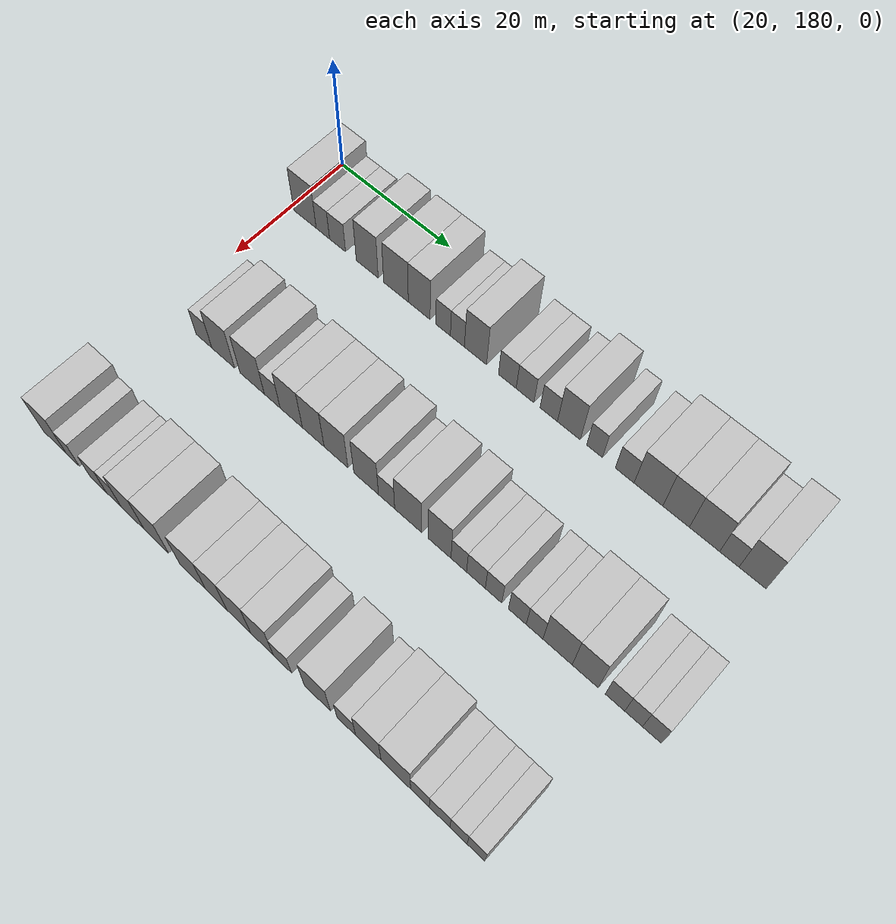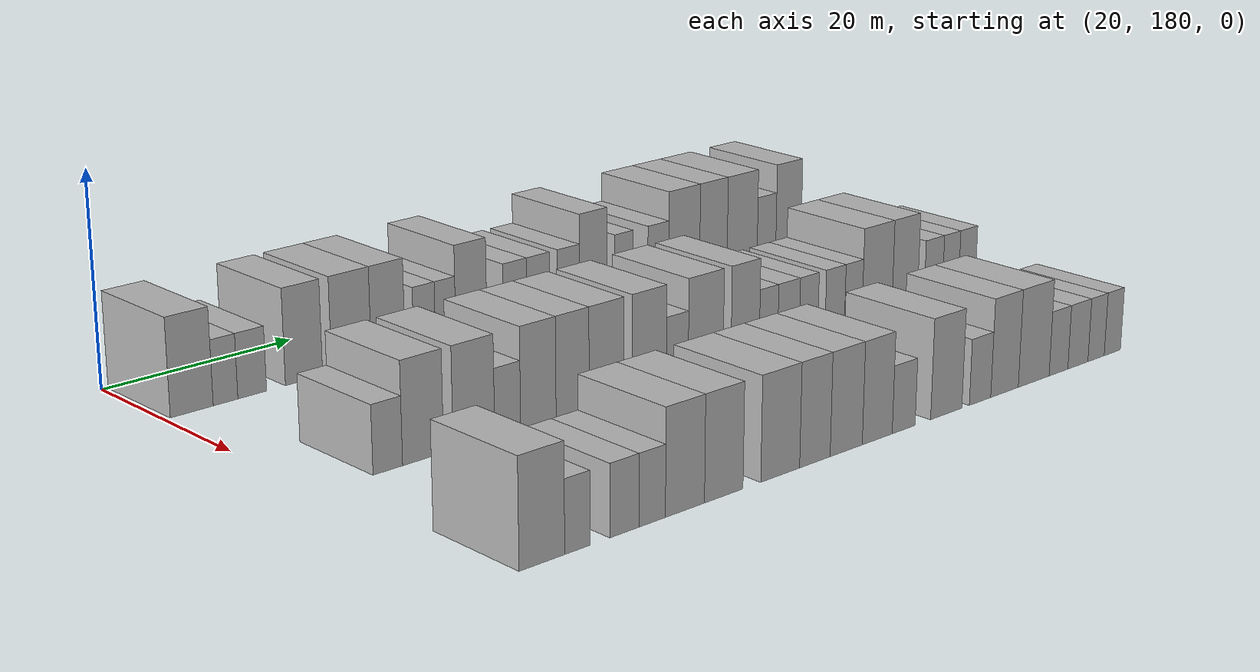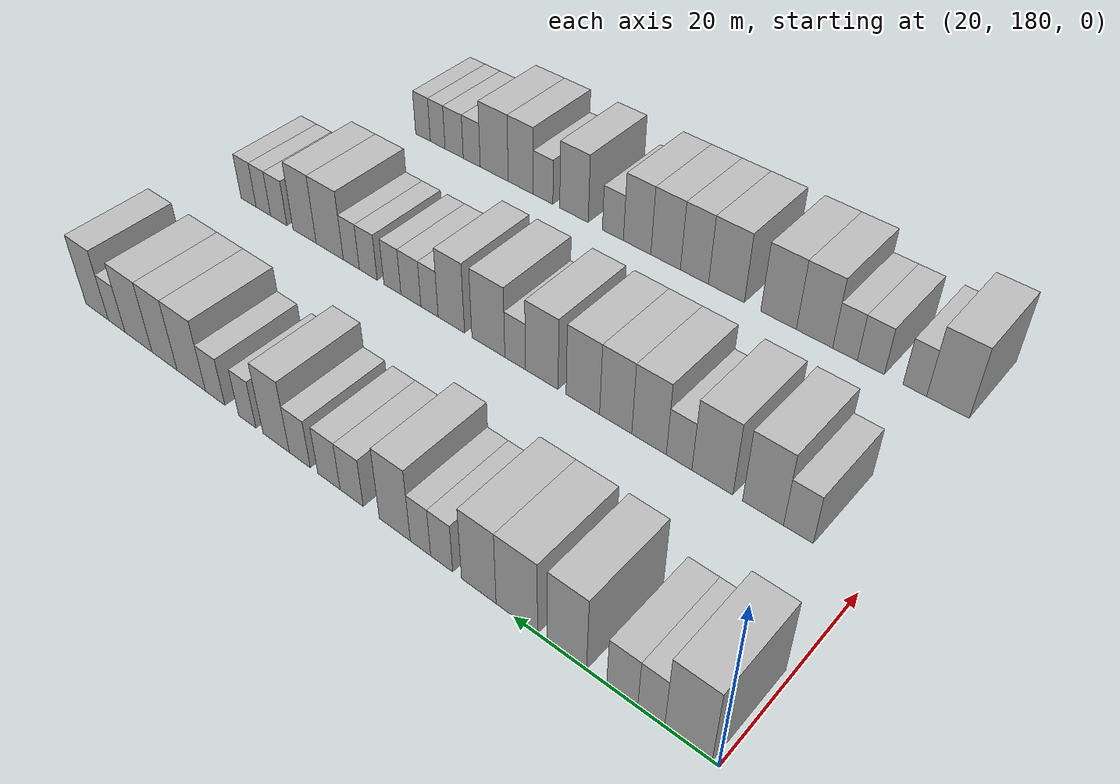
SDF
<sdf version="1.6">
 <world name="default">
  <model name="building_134">
   <static>1</static>
   <pose>25.0000 182.7874 0 0.000000 0.000000 0.000000</pose>
   <link name="link">
    <pose>0 0 4.50 0 0 0</pose>
    <collision name="collision"><geometry><box><size>10.0000 4.3112 9.0000</size></box></geometry></collision>
    <visual name="visual">
     <cast_shadows>0</cast_shadows>
     <geometry><box><size>10.0000 4.3112 9.0000</size></box></geometry>
     <material>
      <script>
       <uri>model://HANNAS_wall/materials/scripts</uri>
       <uri>model://HANNAS_wall/materials/textures</uri>
       <name>vrc/HANNAS_wall</name>
      </script>
     </material>
    </visual>
   </link>
  </model>
  <model name="building_135">
   <static>1</static>
   <pose>25.0000 186.2073 0 0.000000 0.000000 0.000000</pose>
   <link name="link">
    <pose>0 0 3.00 0 0 0</pose>
    <collision name="collision"><geometry><box><size>10.0000 2.5287 6.0000</size></box></geometry></collision>
    <visual name="visual">
     <cast_shadows>0</cast_shadows>
     <geometry><box><size>10.0000 2.5287 6.0000</size></box></geometry>
     <material>
      <script>
       <uri>model://HANNAS_wall/materials/scripts</uri>
       <uri>model://HANNAS_wall/materials/textures</uri>
       <name>vrc/HANNAS_wall</name>
      </script>
     </material>
    </visual>
   </link>
  </model>
  <model name="building_136">
   <static>1</static>
   <pose>25.0000 188.9681 0 0.000000 0.000000 0.000000</pose>
   <link name="link">
    <pose>0 0 3.00 0 0 0</pose>
    <collision name="collision"><geometry><box><size>10.0000 2.9928 6.0000</size></box></geometry></collision>
    <visual name="visual">
     <cast_shadows>0</cast_shadows>
     <geometry><box><size>10.0000 2.9928 6.0000</size></box></geometry>
     <material>
      <script>
       <uri>model://HANNAS_wall/materials/scripts</uri>
       <uri>model://HANNAS_wall/materials/textures</uri>
       <name>vrc/HANNAS_wall</name>
      </script>
     </material>
    </visual>
   </link>
  </model>
  <model name="building_137">
   <static>1</static>
   <pose>25.0000 194.4721 0 0.000000 0.000000 0.000000</pose>
   <link name="link">
    <pose>0 0 4.50 0 0 0</pose>
    <collision name="collision"><geometry><box><size>10.0000 4.0153 9.0000</size></box></geometry></collision>
    <visual name="visual">
     <cast_shadows>0</cast_shadows>
     <geometry><box><size>10.0000 4.0153 9.0000</size></box></geometry>
     <material>
      <script>
       <uri>model://HANNAS_wall/materials/scripts</uri>
       <uri>model://HANNAS_wall/materials/textures</uri>
       <name>vrc/HANNAS_wall</name>
      </script>
     </material>
    </visual>
   </link>
  </model>
  <model name="building_138">
   <static>1</static>
   <pose>25.0000 199.6897 0 0.000000 0.000000 0.000000</pose>
   <link name="link">
    <pose>0 0 4.50 0 0 0</pose>
    <collision name="collision"><geometry><box><size>10.0000 4.4199 9.0000</size></box></geometry></collision>
    <visual name="visual">
     <cast_shadows>0</cast_shadows>
     <geometry><box><size>10.0000 4.4199 9.0000</size></box></geometry>
     <material>
      <script>
       <uri>model://HANNAS_wall/materials/scripts</uri>
       <uri>model://HANNAS_wall/materials/textures</uri>
       <name>vrc/HANNAS_wall</name>
      </script>
     </material>
    </visual>
   </link>
  </model>
  <model name="building_139">
   <static>1</static>
   <pose>25.0000 203.8203 0 0.000000 0.000000 0.000000</pose>
   <link name="link">
    <pose>0 0 4.50 0 0 0</pose>
    <collision name="collision"><geometry><box><size>10.0000 3.8413 9.0000</size></box></geometry></collision>
    <visual name="visual">
     <cast_shadows>0</cast_shadows>
     <geometry><box><size>10.0000 3.8413 9.0000</size></box></geometry>
     <material>
      <script>
       <uri>model://HANNAS_wall/materials/scripts</uri>
       <uri>model://HANNAS_wall/materials/textures</uri>
       <name>vrc/HANNAS_wall</name>
      </script>
     </material>
    </visual>
   </link>
  </model>
  <model name="building_140">
   <static>1</static>
   <pose>25.0000 208.0142 0 0.000000 0.000000 0.000000</pose>
   <link name="link">
    <pose>0 0 3.00 0 0 0</pose>
    <collision name="collision"><geometry><box><size>10.0000 2.5465 6.0000</size></box></geometry></collision>
    <visual name="visual">
     <cast_shadows>0</cast_shadows>
     <geometry><box><size>10.0000 2.5465 6.0000</size></box></geometry>
     <material>
      <script>
       <uri>model://HANNAS_wall/materials/scripts</uri>
       <uri>model://HANNAS_wall/materials/textures</uri>
       <name>vrc/HANNAS_wall</name>
      </script>
     </material>
    </visual>
   </link>
  </model>
  <model name="building_141">
   <static>1</static>
   <pose>25.0000 210.4906 0 0.000000 0.000000 0.000000</pose>
   <link name="link">
    <pose>0 0 3.00 0 0 0</pose>
    <collision name="collision"><geometry><box><size>10.0000 2.4062 6.0000</size></box></geometry></collision>
    <visual name="visual">
     <cast_shadows>0</cast_shadows>
     <geometry><box><size>10.0000 2.4062 6.0000</size></box></geometry>
     <material>
      <script>
       <uri>model://HANNAS_wall/materials/scripts</uri>
       <uri>model://HANNAS_wall/materials/textures</uri>
       <name>vrc/HANNAS_wall</name>
      </script>
     </material>
    </visual>
   </link>
  </model>
  <model name="building_142">
   <static>1</static>
   <pose>25.0000 213.5738 0 0.000000 0.000000 0.000000</pose>
   <link name="link">
    <pose>0 0 4.50 0 0 0</pose>
    <collision name="collision"><geometry><box><size>10.0000 3.7603 9.0000</size></box></geometry></collision>
    <visual name="visual">
     <cast_shadows>0</cast_shadows>
     <geometry><box><size>10.0000 3.7603 9.0000</size></box></geometry>
     <material>
      <script>
       <uri>model://HANNAS_wall/materials/scripts</uri>
       <uri>model://HANNAS_wall/materials/textures</uri>
       <name>vrc/HANNAS_wall</name>
      </script>
     </material>
    </visual>
   </link>
  </model>
  <model name="building_143">
   <static>1</static>
   <pose>25.0000 218.9261 0 0.000000 0.000000 0.000000</pose>
   <link name="link">
    <pose>0 0 3.00 0 0 0</pose>
    <collision name="collision"><geometry><box><size>10.0000 2.9441 6.0000</size></box></geometry></collision>
    <visual name="visual">
     <cast_shadows>0</cast_shadows>
     <geometry><box><size>10.0000 2.9441 6.0000</size></box></geometry>
     <material>
      <script>
       <uri>model://HANNAS_wall/materials/scripts</uri>
       <uri>model://HANNAS_wall/materials/textures</uri>
       <name>vrc/HANNAS_wall</name>
      </script>
     </material>
    </visual>
   </link>
  </model>
  <model name="building_144">
   <static>1</static>
   <pose>25.0000 221.8528 0 0.000000 0.000000 0.000000</pose>
   <link name="link">
    <pose>0 0 3.00 0 0 0</pose>
    <collision name="collision"><geometry><box><size>10.0000 2.9094 6.0000</size></box></geometry></collision>
    <visual name="visual">
     <cast_shadows>0</cast_shadows>
     <geometry><box><size>10.0000 2.9094 6.0000</size></box></geometry>
     <material>
      <script>
       <uri>model://HANNAS_wall/materials/scripts</uri>
       <uri>model://HANNAS_wall/materials/textures</uri>
       <name>vrc/HANNAS_wall</name>
      </script>
     </material>
    </visual>
   </link>
  </model>
  <model name="building_145">
   <static>1</static>
   <pose>25.0000 225.7180 0 0.000000 0.000000 0.000000</pose>
   <link name="link">
    <pose>0 0 3.00 0 0 0</pose>
    <collision name="collision"><geometry><box><size>10.0000 2.8211 6.0000</size></box></geometry></collision>
    <visual name="visual">
     <cast_shadows>0</cast_shadows>
     <geometry><box><size>10.0000 2.8211 6.0000</size></box></geometry>
     <material>
      <script>
       <uri>model://HANNAS_wall/materials/scripts</uri>
       <uri>model://HANNAS_wall/materials/textures</uri>
       <name>vrc/HANNAS_wall</name>
      </script>
     </material>
    </visual>
   </link>
  </model>
  <model name="building_146">
   <static>1</static>
   <pose>25.0000 228.9493 0 0.000000 0.000000 0.000000</pose>
   <link name="link">
    <pose>0 0 4.50 0 0 0</pose>
    <collision name="collision"><geometry><box><size>10.0000 3.6415 9.0000</size></box></geometry></collision>
    <visual name="visual">
     <cast_shadows>0</cast_shadows>
     <geometry><box><size>10.0000 3.6415 9.0000</size></box></geometry>
     <material>
      <script>
       <uri>model://HANNAS_wall/materials/scripts</uri>
       <uri>model://HANNAS_wall/materials/textures</uri>
       <name>vrc/HANNAS_wall</name>
      </script>
     </material>
    </visual>
   </link>
  </model>
  <model name="building_147">
   <static>1</static>
   <pose>25.0000 233.0039 0 0.000000 0.000000 0.000000</pose>
   <link name="link">
    <pose>0 0 3.00 0 0 0</pose>
    <collision name="collision"><geometry><box><size>10.0000 2.4675 6.0000</size></box></geometry></collision>
    <visual name="visual">
     <cast_shadows>0</cast_shadows>
     <geometry><box><size>10.0000 2.4675 6.0000</size></box></geometry>
     <material>
      <script>
       <uri>model://HANNAS_wall/materials/scripts</uri>
       <uri>model://HANNAS_wall/materials/textures</uri>
       <name>vrc/HANNAS_wall</name>
      </script>
     </material>
    </visual>
   </link>
  </model>
  <model name="building_148">
   <static>1</static>
   <pose>25.0000 237.6811 0 0.000000 0.000000 0.000000</pose>
   <link name="link">
    <pose>0 0 3.00 0 0 0</pose>
    <collision name="collision"><geometry><box><size>10.0000 2.8870 6.0000</size></box></geometry></collision>
    <visual name="visual">
     <cast_shadows>0</cast_shadows>
     <geometry><box><size>10.0000 2.8870 6.0000</size></box></geometry>
     <material>
      <script>
       <uri>model://HANNAS_wall/materials/scripts</uri>
       <uri>model://HANNAS_wall/materials/textures</uri>
       <name>vrc/HANNAS_wall</name>
      </script>
     </material>
    </visual>
   </link>
  </model>
  <model name="building_149">
   <static>1</static>
   <pose>25.0000 241.2977 0 0.000000 0.000000 0.000000</pose>
   <link name="link">
    <pose>0 0 4.50 0 0 0</pose>
    <collision name="collision"><geometry><box><size>10.0000 4.3461 9.0000</size></box></geometry></collision>
    <visual name="visual">
     <cast_shadows>0</cast_shadows>
     <geometry><box><size>10.0000 4.3461 9.0000</size></box></geometry>
     <material>
      <script>
       <uri>model://HANNAS_wall/materials/scripts</uri>
       <uri>model://HANNAS_wall/materials/textures</uri>
       <name>vrc/HANNAS_wall</name>
      </script>
     </material>
    </visual>
   </link>
  </model>
  <model name="building_150">
   <static>1</static>
   <pose>25.0000 245.4426 0 0.000000 0.000000 0.000000</pose>
   <link name="link">
    <pose>0 0 4.50 0 0 0</pose>
    <collision name="collision"><geometry><box><size>10.0000 3.9438 9.0000</size></box></geometry></collision>
    <visual name="visual">
     <cast_shadows>0</cast_shadows>
     <geometry><box><size>10.0000 3.9438 9.0000</size></box></geometry>
     <material>
      <script>
       <uri>model://HANNAS_wall/materials/scripts</uri>
       <uri>model://HANNAS_wall/materials/textures</uri>
       <name>vrc/HANNAS_wall</name>
      </script>
     </material>
    </visual>
   </link>
  </model>
  <model name="building_151">
   <static>1</static>
   <pose>25.0000 249.6217 0 0.000000 0.000000 0.000000</pose>
   <link name="link">
    <pose>0 0 4.50 0 0 0</pose>
    <collision name="collision"><geometry><box><size>10.0000 4.4144 9.0000</size></box></geometry></collision>
    <visual name="visual">
     <cast_shadows>0</cast_shadows>
     <geometry><box><size>10.0000 4.4144 9.0000</size></box></geometry>
     <material>
      <script>
       <uri>model://HANNAS_wall/materials/scripts</uri>
       <uri>model://HANNAS_wall/materials/textures</uri>
       <name>vrc/HANNAS_wall</name>
      </script>
     </material>
    </visual>
   </link>
  </model>
  <model name="building_152">
   <static>1</static>
   <pose>25.0000 253.2204 0 0.000000 0.000000 0.000000</pose>
   <link name="link">
    <pose>0 0 3.00 0 0 0</pose>
    <collision name="collision"><geometry><box><size>10.0000 2.7829 6.0000</size></box></geometry></collision>
    <visual name="visual">
     <cast_shadows>0</cast_shadows>
     <geometry><box><size>10.0000 2.7829 6.0000</size></box></geometry>
     <material>
      <script>
       <uri>model://HANNAS_wall/materials/scripts</uri>
       <uri>model://HANNAS_wall/materials/textures</uri>
       <name>vrc/HANNAS_wall</name>
      </script>
     </material>
    </visual>
   </link>
  </model>
  <model name="building_153">
   <static>1</static>
   <pose>25.0000 256.5295 0 0.000000 0.000000 0.000000</pose>
   <link name="link">
    <pose>0 0 4.50 0 0 0</pose>
    <collision name="collision"><geometry><box><size>10.0000 3.8353 9.0000</size></box></geometry></collision>
    <visual name="visual">
     <cast_shadows>0</cast_shadows>
     <geometry><box><size>10.0000 3.8353 9.0000</size></box></geometry>
     <material>
      <script>
       <uri>model://HANNAS_wall/materials/scripts</uri>
       <uri>model://HANNAS_wall/materials/textures</uri>
       <name>vrc/HANNAS_wall</name>
      </script>
     </material>
    </visual>
   </link>
  </model>
  <model name="building_314">
   <static>1</static>
   <pose>47.0000 186.9718 0 0.000000 0.000000 0.000000</pose>
   <link name="link">
    <pose>0 0 3.00 0 0 0</pose>
    <collision name="collision"><geometry><box><size>10.0000 2.9732 6.0000</size></box></geometry></collision>
    <visual name="visual">
     <cast_shadows>0</cast_shadows>
     <geometry><box><size>10.0000 2.9732 6.0000</size></box></geometry>
     <material>
      <script>
       <uri>model://HANNAS_wall/materials/scripts</uri>
       <uri>model://HANNAS_wall/materials/textures</uri>
       <name>vrc/HANNAS_wall</name>
      </script>
     </material>
    </visual>
   </link>
  </model>
  <model name="building_315">
   <static>1</static>
   <pose>47.0000 190.5674 0 0.000000 0.000000 0.000000</pose>
   <link name="link">
    <pose>0 0 4.50 0 0 0</pose>
    <collision name="collision"><geometry><box><size>10.0000 4.2180 9.0000</size></box></geometry></collision>
    <visual name="visual">
     <cast_shadows>0</cast_shadows>
     <geometry><box><size>10.0000 4.2180 9.0000</size></box></geometry>
     <material>
      <script>
       <uri>model://HANNAS_wall/materials/scripts</uri>
       <uri>model://HANNAS_wall/materials/textures</uri>
       <name>vrc/HANNAS_wall</name>
      </script>
     </material>
    </visual>
   </link>
  </model>
  <model name="building_316">
   <static>1</static>
   <pose>47.0000 195.8863 0 0.000000 0.000000 0.000000</pose>
   <link name="link">
    <pose>0 0 4.50 0 0 0</pose>
    <collision name="collision"><geometry><box><size>10.0000 4.4198 9.0000</size></box></geometry></collision>
    <visual name="visual">
     <cast_shadows>0</cast_shadows>
     <geometry><box><size>10.0000 4.4198 9.0000</size></box></geometry>
     <material>
      <script>
       <uri>model://HANNAS_wall/materials/scripts</uri>
       <uri>model://HANNAS_wall/materials/textures</uri>
       <name>vrc/HANNAS_wall</name>
      </script>
     </material>
    </visual>
   </link>
  </model>
  <model name="building_317">
   <static>1</static>
   <pose>47.0000 199.5125 0 0.000000 0.000000 0.000000</pose>
   <link name="link">
    <pose>0 0 3.00 0 0 0</pose>
    <collision name="collision"><geometry><box><size>10.0000 2.8325 6.0000</size></box></geometry></collision>
    <visual name="visual">
     <cast_shadows>0</cast_shadows>
     <geometry><box><size>10.0000 2.8325 6.0000</size></box></geometry>
     <material>
      <script>
       <uri>model://HANNAS_wall/materials/scripts</uri>
       <uri>model://HANNAS_wall/materials/textures</uri>
       <name>vrc/HANNAS_wall</name>
      </script>
     </material>
    </visual>
   </link>
  </model>
  <model name="building_318">
   <static>1</static>
   <pose>47.0000 202.8997 0 0.000000 0.000000 0.000000</pose>
   <link name="link">
    <pose>0 0 4.50 0 0 0</pose>
    <collision name="collision"><geometry><box><size>10.0000 3.9421 9.0000</size></box></geometry></collision>
    <visual name="visual">
     <cast_shadows>0</cast_shadows>
     <geometry><box><size>10.0000 3.9421 9.0000</size></box></geometry>
     <material>
      <script>
       <uri>model://HANNAS_wall/materials/scripts</uri>
       <uri>model://HANNAS_wall/materials/textures</uri>
       <name>vrc/HANNAS_wall</name>
      </script>
     </material>
    </visual>
   </link>
  </model>
  <model name="building_319">
   <static>1</static>
   <pose>47.0000 206.7609 0 0.000000 0.000000 0.000000</pose>
   <link name="link">
    <pose>0 0 4.50 0 0 0</pose>
    <collision name="collision"><geometry><box><size>10.0000 3.7803 9.0000</size></box></geometry></collision>
    <visual name="visual">
     <cast_shadows>0</cast_shadows>
     <geometry><box><size>10.0000 3.7803 9.0000</size></box></geometry>
     <material>
      <script>
       <uri>model://HANNAS_wall/materials/scripts</uri>
       <uri>model://HANNAS_wall/materials/textures</uri>
       <name>vrc/HANNAS_wall</name>
      </script>
     </material>
    </visual>
   </link>
  </model>
  <model name="building_320">
   <static>1</static>
   <pose>47.0000 210.6855 0 0.000000 0.000000 0.000000</pose>
   <link name="link">
    <pose>0 0 4.50 0 0 0</pose>
    <collision name="collision"><geometry><box><size>10.0000 4.0688 9.0000</size></box></geometry></collision>
    <visual name="visual">
     <cast_shadows>0</cast_shadows>
     <geometry><box><size>10.0000 4.0688 9.0000</size></box></geometry>
     <material>
      <script>
       <uri>model://HANNAS_wall/materials/scripts</uri>
       <uri>model://HANNAS_wall/materials/textures</uri>
       <name>vrc/HANNAS_wall</name>
      </script>
     </material>
    </visual>
   </link>
  </model>
  <model name="building_321">
   <static>1</static>
   <pose>47.0000 215.7783 0 0.000000 0.000000 0.000000</pose>
   <link name="link">
    <pose>0 0 4.50 0 0 0</pose>
    <collision name="collision"><geometry><box><size>10.0000 4.1168 9.0000</size></box></geometry></collision>
    <visual name="visual">
     <cast_shadows>0</cast_shadows>
     <geometry><box><size>10.0000 4.1168 9.0000</size></box></geometry>
     <material>
      <script>
       <uri>model://HANNAS_wall/materials/scripts</uri>
       <uri>model://HANNAS_wall/materials/textures</uri>
       <name>vrc/HANNAS_wall</name>
      </script>
     </material>
    </visual>
   </link>
  </model>
  <model name="building_322">
   <static>1</static>
   <pose>47.0000 219.1699 0 0.000000 0.000000 0.000000</pose>
   <link name="link">
    <pose>0 0 3.00 0 0 0</pose>
    <collision name="collision"><geometry><box><size>10.0000 2.6664 6.0000</size></box></geometry></collision>
    <visual name="visual">
     <cast_shadows>0</cast_shadows>
     <geometry><box><size>10.0000 2.6664 6.0000</size></box></geometry>
     <material>
      <script>
       <uri>model://HANNAS_wall/materials/scripts</uri>
       <uri>model://HANNAS_wall/materials/textures</uri>
       <name>vrc/HANNAS_wall</name>
      </script>
     </material>
    </visual>
   </link>
  </model>
  <model name="building_323">
   <static>1</static>
   <pose>47.0000 222.6980 0 0.000000 0.000000 0.000000</pose>
   <link name="link">
    <pose>0 0 4.50 0 0 0</pose>
    <collision name="collision"><geometry><box><size>10.0000 4.3898 9.0000</size></box></geometry></collision>
    <visual name="visual">
     <cast_shadows>0</cast_shadows>
     <geometry><box><size>10.0000 4.3898 9.0000</size></box></geometry>
     <material>
      <script>
       <uri>model://HANNAS_wall/materials/scripts</uri>
       <uri>model://HANNAS_wall/materials/textures</uri>
       <name>vrc/HANNAS_wall</name>
      </script>
     </material>
    </visual>
   </link>
  </model>
  <model name="building_324">
   <static>1</static>
   <pose>47.0000 227.7214 0 0.000000 0.000000 0.000000</pose>
   <link name="link">
    <pose>0 0 4.50 0 0 0</pose>
    <collision name="collision"><geometry><box><size>10.0000 3.6569 9.0000</size></box></geometry></collision>
    <visual name="visual">
     <cast_shadows>0</cast_shadows>
     <geometry><box><size>10.0000 3.6569 9.0000</size></box></geometry>
     <material>
      <script>
       <uri>model://HANNAS_wall/materials/scripts</uri>
       <uri>model://HANNAS_wall/materials/textures</uri>
       <name>vrc/HANNAS_wall</name>
      </script>
     </material>
    </visual>
   </link>
  </model>
  <model name="building_325">
   <static>1</static>
   <pose>47.0000 230.7666 0 0.000000 0.000000 0.000000</pose>
   <link name="link">
    <pose>0 0 3.00 0 0 0</pose>
    <collision name="collision"><geometry><box><size>10.0000 2.4335 6.0000</size></box></geometry></collision>
    <visual name="visual">
     <cast_shadows>0</cast_shadows>
     <geometry><box><size>10.0000 2.4335 6.0000</size></box></geometry>
     <material>
      <script>
       <uri>model://HANNAS_wall/materials/scripts</uri>
       <uri>model://HANNAS_wall/materials/textures</uri>
       <name>vrc/HANNAS_wall</name>
      </script>
     </material>
    </visual>
   </link>
  </model>
  <model name="building_326">
   <static>1</static>
   <pose>47.0000 233.4302 0 0.000000 0.000000 0.000000</pose>
   <link name="link">
    <pose>0 0 3.00 0 0 0</pose>
    <collision name="collision"><geometry><box><size>10.0000 2.8937 6.0000</size></box></geometry></collision>
    <visual name="visual">
     <cast_shadows>0</cast_shadows>
     <geometry><box><size>10.0000 2.8937 6.0000</size></box></geometry>
     <material>
      <script>
       <uri>model://HANNAS_wall/materials/scripts</uri>
       <uri>model://HANNAS_wall/materials/textures</uri>
       <name>vrc/HANNAS_wall</name>
      </script>
     </material>
    </visual>
   </link>
  </model>
  <model name="building_327">
   <static>1</static>
   <pose>47.0000 236.1390 0 0.000000 0.000000 0.000000</pose>
   <link name="link">
    <pose>0 0 3.00 0 0 0</pose>
    <collision name="collision"><geometry><box><size>10.0000 2.5239 6.0000</size></box></geometry></collision>
    <visual name="visual">
     <cast_shadows>0</cast_shadows>
     <geometry><box><size>10.0000 2.5239 6.0000</size></box></geometry>
     <material>
      <script>
       <uri>model://HANNAS_wall/materials/scripts</uri>
       <uri>model://HANNAS_wall/materials/textures</uri>
       <name>vrc/HANNAS_wall</name>
      </script>
     </material>
    </visual>
   </link>
  </model>
  <model name="building_328">
   <static>1</static>
   <pose>47.0000 239.7476 0 0.000000 0.000000 0.000000</pose>
   <link name="link">
    <pose>0 0 3.00 0 0 0</pose>
    <collision name="collision"><geometry><box><size>10.0000 2.6932 6.0000</size></box></geometry></collision>
    <visual name="visual">
     <cast_shadows>0</cast_shadows>
     <geometry><box><size>10.0000 2.6932 6.0000</size></box></geometry>
     <material>
      <script>
       <uri>model://HANNAS_wall/materials/scripts</uri>
       <uri>model://HANNAS_wall/materials/textures</uri>
       <name>vrc/HANNAS_wall</name>
      </script>
     </material>
    </visual>
   </link>
  </model>
  <model name="building_329">
   <static>1</static>
   <pose>47.0000 242.3303 0 0.000000 0.000000 0.000000</pose>
   <link name="link">
    <pose>0 0 3.00 0 0 0</pose>
    <collision name="collision"><geometry><box><size>10.0000 2.4722 6.0000</size></box></geometry></collision>
    <visual name="visual">
     <cast_shadows>0</cast_shadows>
     <geometry><box><size>10.0000 2.4722 6.0000</size></box></geometry>
     <material>
      <script>
       <uri>model://HANNAS_wall/materials/scripts</uri>
       <uri>model://HANNAS_wall/materials/textures</uri>
       <name>vrc/HANNAS_wall</name>
      </script>
     </material>
    </visual>
   </link>
  </model>
  <model name="building_330">
   <static>1</static>
   <pose>47.0000 245.7153 0 0.000000 0.000000 0.000000</pose>
   <link name="link">
    <pose>0 0 4.50 0 0 0</pose>
    <collision name="collision"><geometry><box><size>10.0000 4.2978 9.0000</size></box></geometry></collision>
    <visual name="visual">
     <cast_shadows>0</cast_shadows>
     <geometry><box><size>10.0000 4.2978 9.0000</size></box></geometry>
     <material>
      <script>
       <uri>model://HANNAS_wall/materials/scripts</uri>
       <uri>model://HANNAS_wall/materials/textures</uri>
       <name>vrc/HANNAS_wall</name>
      </script>
     </material>
    </visual>
   </link>
  </model>
  <model name="building_331">
   <static>1</static>
   <pose>47.0000 249.7360 0 0.000000 0.000000 0.000000</pose>
   <link name="link">
    <pose>0 0 4.50 0 0 0</pose>
    <collision name="collision"><geometry><box><size>10.0000 3.7436 9.0000</size></box></geometry></collision>
    <visual name="visual">
     <cast_shadows>0</cast_shadows>
     <geometry><box><size>10.0000 3.7436 9.0000</size></box></geometry>
     <material>
      <script>
       <uri>model://HANNAS_wall/materials/scripts</uri>
       <uri>model://HANNAS_wall/materials/textures</uri>
       <name>vrc/HANNAS_wall</name>
      </script>
     </material>
    </visual>
   </link>
  </model>
  <model name="building_332">
   <static>1</static>
   <pose>47.0000 253.9769 0 0.000000 0.000000 0.000000</pose>
   <link name="link">
    <pose>0 0 3.00 0 0 0</pose>
    <collision name="collision"><geometry><box><size>10.0000 2.7381 6.0000</size></box></geometry></collision>
    <visual name="visual">
     <cast_shadows>0</cast_shadows>
     <geometry><box><size>10.0000 2.7381 6.0000</size></box></geometry>
     <material>
      <script>
       <uri>model://HANNAS_wall/materials/scripts</uri>
       <uri>model://HANNAS_wall/materials/textures</uri>
       <name>vrc/HANNAS_wall</name>
      </script>
     </material>
    </visual>
   </link>
  </model>
  <model name="building_333">
   <static>1</static>
   <pose>47.0000 256.5766 0 0.000000 0.000000 0.000000</pose>
   <link name="link">
    <pose>0 0 3.00 0 0 0</pose>
    <collision name="collision"><geometry><box><size>10.0000 2.4613 6.0000</size></box></geometry></collision>
    <visual name="visual">
     <cast_shadows>0</cast_shadows>
     <geometry><box><size>10.0000 2.4613 6.0000</size></box></geometry>
     <material>
      <script>
       <uri>model://HANNAS_wall/materials/scripts</uri>
       <uri>model://HANNAS_wall/materials/textures</uri>
       <name>vrc/HANNAS_wall</name>
      </script>
     </material>
    </visual>
   </link>
  </model>
  <model name="building_334">
   <static>1</static>
   <pose>47.0000 259.1070 0 0.000000 0.000000 0.000000</pose>
   <link name="link">
    <pose>0 0 3.00 0 0 0</pose>
    <collision name="collision"><geometry><box><size>10.0000 2.5995 6.0000</size></box></geometry></collision>
    <visual name="visual">
     <cast_shadows>0</cast_shadows>
     <geometry><box><size>10.0000 2.5995 6.0000</size></box></geometry>
     <material>
      <script>
       <uri>model://HANNAS_wall/materials/scripts</uri>
       <uri>model://HANNAS_wall/materials/textures</uri>
       <name>vrc/HANNAS_wall</name>
      </script>
     </material>
    </visual>
   </link>
  </model>
  <model name="building_498">
   <static>1</static>
   <pose>69.0000 184.2885 0 0.000000 0.000000 0.000000</pose>
   <link name="link">
    <pose>0 0 4.50 0 0 0</pose>
    <collision name="collision"><geometry><box><size>10.0000 4.4036 9.0000</size></box></geometry></collision>
    <visual name="visual">
     <cast_shadows>0</cast_shadows>
     <geometry><box><size>10.0000 4.4036 9.0000</size></box></geometry>
     <material>
      <script>
       <uri>model://HANNAS_wall/materials/scripts</uri>
       <uri>model://HANNAS_wall/materials/textures</uri>
       <name>vrc/HANNAS_wall</name>
      </script>
     </material>
    </visual>
   </link>
  </model>
  <model name="building_499">
   <static>1</static>
   <pose>69.0000 187.7437 0 0.000000 0.000000 0.000000</pose>
   <link name="link">
    <pose>0 0 3.00 0 0 0</pose>
    <collision name="collision"><geometry><box><size>10.0000 2.5068 6.0000</size></box></geometry></collision>
    <visual name="visual">
     <cast_shadows>0</cast_shadows>
     <geometry><box><size>10.0000 2.5068 6.0000</size></box></geometry>
     <material>
      <script>
       <uri>model://HANNAS_wall/materials/scripts</uri>
       <uri>model://HANNAS_wall/materials/textures</uri>
       <name>vrc/HANNAS_wall</name>
      </script>
     </material>
    </visual>
   </link>
  </model>
  <model name="building_500">
   <static>1</static>
   <pose>69.0000 192.4821 0 0.000000 0.000000 0.000000</pose>
   <link name="link">
    <pose>0 0 3.00 0 0 0</pose>
    <collision name="collision"><geometry><box><size>10.0000 2.9700 6.0000</size></box></geometry></collision>
    <visual name="visual">
     <cast_shadows>0</cast_shadows>
     <geometry><box><size>10.0000 2.9700 6.0000</size></box></geometry>
     <material>
      <script>
       <uri>model://HANNAS_wall/materials/scripts</uri>
       <uri>model://HANNAS_wall/materials/textures</uri>
       <name>vrc/HANNAS_wall</name>
      </script>
     </material>
    </visual>
   </link>
  </model>
  <model name="building_501">
   <static>1</static>
   <pose>69.0000 195.3495 0 0.000000 0.000000 0.000000</pose>
   <link name="link">
    <pose>0 0 3.00 0 0 0</pose>
    <collision name="collision"><geometry><box><size>10.0000 2.7648 6.0000</size></box></geometry></collision>
    <visual name="visual">
     <cast_shadows>0</cast_shadows>
     <geometry><box><size>10.0000 2.7648 6.0000</size></box></geometry>
     <material>
      <script>
       <uri>model://HANNAS_wall/materials/scripts</uri>
       <uri>model://HANNAS_wall/materials/textures</uri>
       <name>vrc/HANNAS_wall</name>
      </script>
     </material>
    </visual>
   </link>
  </model>
  <model name="building_502">
   <static>1</static>
   <pose>69.0000 198.8225 0 0.000000 0.000000 0.000000</pose>
   <link name="link">
    <pose>0 0 4.50 0 0 0</pose>
    <collision name="collision"><geometry><box><size>10.0000 4.1813 9.0000</size></box></geometry></collision>
    <visual name="visual">
     <cast_shadows>0</cast_shadows>
     <geometry><box><size>10.0000 4.1813 9.0000</size></box></geometry>
     <material>
      <script>
       <uri>model://HANNAS_wall/materials/scripts</uri>
       <uri>model://HANNAS_wall/materials/textures</uri>
       <name>vrc/HANNAS_wall</name>
      </script>
     </material>
    </visual>
   </link>
  </model>
  <model name="building_503">
   <static>1</static>
   <pose>69.0000 203.0318 0 0.000000 0.000000 0.000000</pose>
   <link name="link">
    <pose>0 0 4.50 0 0 0</pose>
    <collision name="collision"><geometry><box><size>10.0000 4.2374 9.0000</size></box></geometry></collision>
    <visual name="visual">
     <cast_shadows>0</cast_shadows>
     <geometry><box><size>10.0000 4.2374 9.0000</size></box></geometry>
     <material>
      <script>
       <uri>model://HANNAS_wall/materials/scripts</uri>
       <uri>model://HANNAS_wall/materials/textures</uri>
       <name>vrc/HANNAS_wall</name>
      </script>
     </material>
    </visual>
   </link>
  </model>
  <model name="building_504">
   <static>1</static>
   <pose>69.0000 209.3866 0 0.000000 0.000000 0.000000</pose>
   <link name="link">
    <pose>0 0 4.50 0 0 0</pose>
    <collision name="collision"><geometry><box><size>10.0000 4.4722 9.0000</size></box></geometry></collision>
    <visual name="visual">
     <cast_shadows>0</cast_shadows>
     <geometry><box><size>10.0000 4.4722 9.0000</size></box></geometry>
     <material>
      <script>
       <uri>model://HANNAS_wall/materials/scripts</uri>
       <uri>model://HANNAS_wall/materials/textures</uri>
       <name>vrc/HANNAS_wall</name>
      </script>
     </material>
    </visual>
   </link>
  </model>
  <model name="building_505">
   <static>1</static>
   <pose>69.0000 213.4260 0 0.000000 0.000000 0.000000</pose>
   <link name="link">
    <pose>0 0 4.50 0 0 0</pose>
    <collision name="collision"><geometry><box><size>10.0000 3.6066 9.0000</size></box></geometry></collision>
    <visual name="visual">
     <cast_shadows>0</cast_shadows>
     <geometry><box><size>10.0000 3.6066 9.0000</size></box></geometry>
     <material>
      <script>
       <uri>model://HANNAS_wall/materials/scripts</uri>
       <uri>model://HANNAS_wall/materials/textures</uri>
       <name>vrc/HANNAS_wall</name>
      </script>
     </material>
    </visual>
   </link>
  </model>
  <model name="building_506">
   <static>1</static>
   <pose>69.0000 217.1764 0 0.000000 0.000000 0.000000</pose>
   <link name="link">
    <pose>0 0 4.50 0 0 0</pose>
    <collision name="collision"><geometry><box><size>10.0000 3.8940 9.0000</size></box></geometry></collision>
    <visual name="visual">
     <cast_shadows>0</cast_shadows>
     <geometry><box><size>10.0000 3.8940 9.0000</size></box></geometry>
     <material>
      <script>
       <uri>model://HANNAS_wall/materials/scripts</uri>
       <uri>model://HANNAS_wall/materials/textures</uri>
       <name>vrc/HANNAS_wall</name>
      </script>
     </material>
    </visual>
   </link>
  </model>
  <model name="building_507">
   <static>1</static>
   <pose>69.0000 220.9811 0 0.000000 0.000000 0.000000</pose>
   <link name="link">
    <pose>0 0 4.50 0 0 0</pose>
    <collision name="collision"><geometry><box><size>10.0000 3.7155 9.0000</size></box></geometry></collision>
    <visual name="visual">
     <cast_shadows>0</cast_shadows>
     <geometry><box><size>10.0000 3.7155 9.0000</size></box></geometry>
     <material>
      <script>
       <uri>model://HANNAS_wall/materials/scripts</uri>
       <uri>model://HANNAS_wall/materials/textures</uri>
       <name>vrc/HANNAS_wall</name>
      </script>
     </material>
    </visual>
   </link>
  </model>
  <model name="building_508">
   <static>1</static>
   <pose>69.0000 224.2917 0 0.000000 0.000000 0.000000</pose>
   <link name="link">
    <pose>0 0 3.00 0 0 0</pose>
    <collision name="collision"><geometry><box><size>10.0000 2.9058 6.0000</size></box></geometry></collision>
    <visual name="visual">
     <cast_shadows>0</cast_shadows>
     <geometry><box><size>10.0000 2.9058 6.0000</size></box></geometry>
     <material>
      <script>
       <uri>model://HANNAS_wall/materials/scripts</uri>
       <uri>model://HANNAS_wall/materials/textures</uri>
       <name>vrc/HANNAS_wall</name>
      </script>
     </material>
    </visual>
   </link>
  </model>
  <model name="building_509">
   <static>1</static>
   <pose>69.0000 229.7944 0 0.000000 0.000000 0.000000</pose>
   <link name="link">
    <pose>0 0 4.50 0 0 0</pose>
    <collision name="collision"><geometry><box><size>10.0000 4.0996 9.0000</size></box></geometry></collision>
    <visual name="visual">
     <cast_shadows>0</cast_shadows>
     <geometry><box><size>10.0000 4.0996 9.0000</size></box></geometry>
     <material>
      <script>
       <uri>model://HANNAS_wall/materials/scripts</uri>
       <uri>model://HANNAS_wall/materials/textures</uri>
       <name>vrc/HANNAS_wall</name>
      </script>
     </material>
    </visual>
   </link>
  </model>
  <model name="building_510">
   <static>1</static>
   <pose>69.0000 234.2905 0 0.000000 0.000000 0.000000</pose>
   <link name="link">
    <pose>0 0 3.00 0 0 0</pose>
    <collision name="collision"><geometry><box><size>10.0000 2.8925 6.0000</size></box></geometry></collision>
    <visual name="visual">
     <cast_shadows>0</cast_shadows>
     <geometry><box><size>10.0000 2.8925 6.0000</size></box></geometry>
     <material>
      <script>
       <uri>model://HANNAS_wall/materials/scripts</uri>
       <uri>model://HANNAS_wall/materials/textures</uri>
       <name>vrc/HANNAS_wall</name>
      </script>
     </material>
    </visual>
   </link>
  </model>
  <model name="building_511">
   <static>1</static>
   <pose>69.0000 237.6364 0 0.000000 0.000000 0.000000</pose>
   <link name="link">
    <pose>0 0 4.50 0 0 0</pose>
    <collision name="collision"><geometry><box><size>10.0000 3.7993 9.0000</size></box></geometry></collision>
    <visual name="visual">
     <cast_shadows>0</cast_shadows>
     <geometry><box><size>10.0000 3.7993 9.0000</size></box></geometry>
     <material>
      <script>
       <uri>model://HANNAS_wall/materials/scripts</uri>
       <uri>model://HANNAS_wall/materials/textures</uri>
       <name>vrc/HANNAS_wall</name>
      </script>
     </material>
    </visual>
   </link>
  </model>
  <model name="building_512">
   <static>1</static>
   <pose>69.0000 241.7159 0 0.000000 0.000000 0.000000</pose>
   <link name="link">
    <pose>0 0 4.50 0 0 0</pose>
    <collision name="collision"><geometry><box><size>10.0000 4.3597 9.0000</size></box></geometry></collision>
    <visual name="visual">
     <cast_shadows>0</cast_shadows>
     <geometry><box><size>10.0000 4.3597 9.0000</size></box></geometry>
     <material>
      <script>
       <uri>model://HANNAS_wall/materials/scripts</uri>
       <uri>model://HANNAS_wall/materials/textures</uri>
       <name>vrc/HANNAS_wall</name>
      </script>
     </material>
    </visual>
   </link>
  </model>
  <model name="building_513">
   <static>1</static>
   <pose>69.0000 245.2506 0 0.000000 0.000000 0.000000</pose>
   <link name="link">
    <pose>0 0 3.00 0 0 0</pose>
    <collision name="collision"><geometry><box><size>10.0000 2.7098 6.0000</size></box></geometry></collision>
    <visual name="visual">
     <cast_shadows>0</cast_shadows>
     <geometry><box><size>10.0000 2.7098 6.0000</size></box></geometry>
     <material>
      <script>
       <uri>model://HANNAS_wall/materials/scripts</uri>
       <uri>model://HANNAS_wall/materials/textures</uri>
       <name>vrc/HANNAS_wall</name>
      </script>
     </material>
    </visual>
   </link>
  </model>
  <model name="building_514">
   <static>1</static>
   <pose>69.0000 248.0808 0 0.000000 0.000000 0.000000</pose>
   <link name="link">
    <pose>0 0 3.00 0 0 0</pose>
    <collision name="collision"><geometry><box><size>10.0000 2.9504 6.0000</size></box></geometry></collision>
    <visual name="visual">
     <cast_shadows>0</cast_shadows>
     <geometry><box><size>10.0000 2.9504 6.0000</size></box></geometry>
     <material>
      <script>
       <uri>model://HANNAS_wall/materials/scripts</uri>
       <uri>model://HANNAS_wall/materials/textures</uri>
       <name>vrc/HANNAS_wall</name>
      </script>
     </material>
    </visual>
   </link>
  </model>
  <model name="building_515">
   <static>1</static>
   <pose>69.0000 250.7707 0 0.000000 0.000000 0.000000</pose>
   <link name="link">
    <pose>0 0 3.00 0 0 0</pose>
    <collision name="collision"><geometry><box><size>10.0000 2.4295 6.0000</size></box></geometry></collision>
    <visual name="visual">
     <cast_shadows>0</cast_shadows>
     <geometry><box><size>10.0000 2.4295 6.0000</size></box></geometry>
     <material>
      <script>
       <uri>model://HANNAS_wall/materials/scripts</uri>
       <uri>model://HANNAS_wall/materials/textures</uri>
       <name>vrc/HANNAS_wall</name>
      </script>
     </material>
    </visual>
   </link>
  </model>
  <model name="building_516">
   <static>1</static>
   <pose>69.0000 253.2134 0 0.000000 0.000000 0.000000</pose>
   <link name="link">
    <pose>0 0 3.00 0 0 0</pose>
    <collision name="collision"><geometry><box><size>10.0000 2.4559 6.0000</size></box></geometry></collision>
    <visual name="visual">
     <cast_shadows>0</cast_shadows>
     <geometry><box><size>10.0000 2.4559 6.0000</size></box></geometry>
     <material>
      <script>
       <uri>model://HANNAS_wall/materials/scripts</uri>
       <uri>model://HANNAS_wall/materials/textures</uri>
       <name>vrc/HANNAS_wall</name>
      </script>
     </material>
    </visual>
   </link>
  </model>
 </world>
</sdf>
